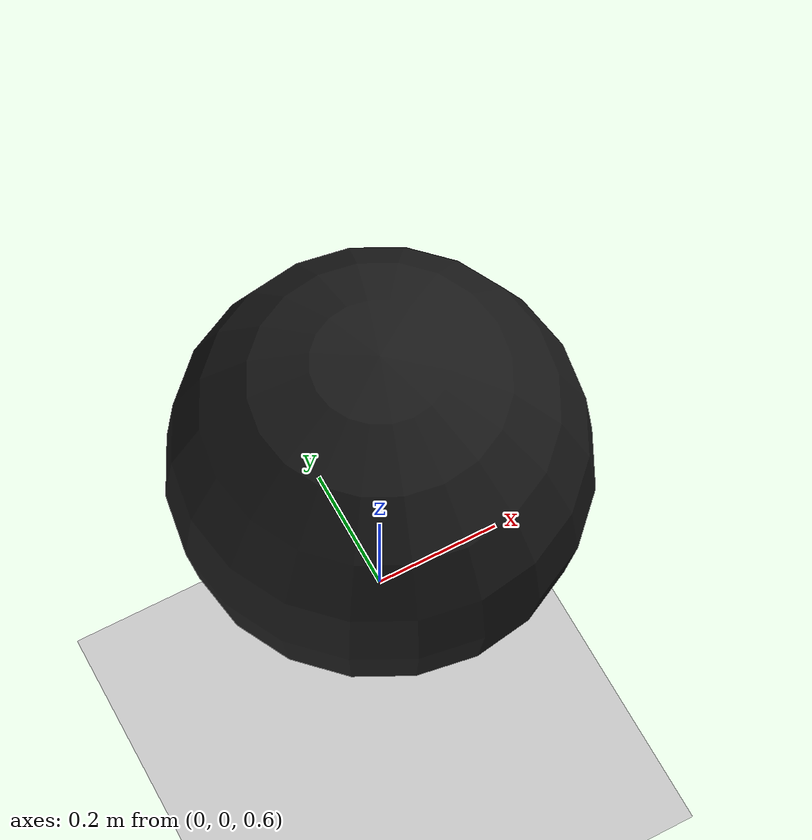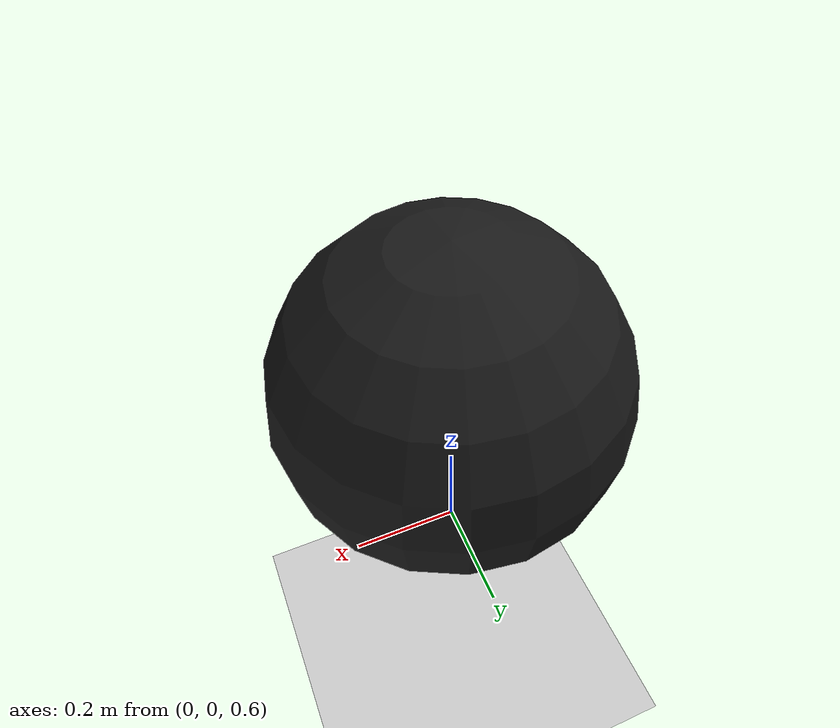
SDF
<?xml version="1.0" ?>
<sdf version="1.10">
  <world name="default">
    <!-- ai genrateed sdf used here -->
    <!-- Physics engine setup -->
    <plugin
      filename="gz-sim-physics-system"
      name="gz::sim::systems::Physics">
    </plugin>
    <plugin
      filename="gz-sim-user-commands-system"
      name="gz::sim::systems::UserCommands">
    </plugin>
    <plugin
      filename="gz-sim-scene-broadcaster-system"
      name="gz::sim::systems::SceneBroadcaster">
    </plugin>

    <!-- Standard sun light source -->
    <light type="directional" name="sun">
      <cast_shadows>true</cast_shadows>
      <pose>0 0 10 0 0 0</pose>
      <diffuse>0.8 0.8 0.8 1</diffuse>
      <specular>0.2 0.2 0.2 1</specular>
      <direction>-0.5 0.1 -0.9</direction>
    </light>

    <!-- Ground plane -->
    <model name="ground_plane">
      <static>true</static>
      <link name="link">
        <collision name="collision">
          <geometry>
            <plane>
              <normal>0 0 1</normal>
              <size>100 100</size>
            </plane>
          </geometry>
        </collision>
        <visual name="visual">
          <geometry>
            <plane>
              <normal>0 0 1</normal>
              <size>100 100</size>
            </plane>
          </geometry>
          <material>
            <ambient>0.8 0.8 0.8 1</ambient>
            <diffuse>0.8 0.8 0.8 1</diffuse>
          </material>
        </visual>
      </link>
    </model>

    <!-- Target sphere model attaching the custom LED plugin -->
    <model name="led_model">
      <pose>0 0 1.0 0 0 0</pose>
      <link name="link">
        <!-- Disabled gravity keeps the dynamic object floating in place -->
        <gravity>false</gravity>
        <visual name="led_visual">
          <geometry>
            <sphere>
              <radius>0.3</radius>
            </sphere>
          </geometry>
          <material>
            <ambient>0.1 0.1 0.1 1</ambient>
            <diffuse>0.1 0.1 0.1 1</diffuse>
          </material>
        </visual>
      </link>

      <!-- Custom LED System Plugin -->
      <plugin
        filename="libLedSensor.so"
        name="gz::sim::v8::systems::LedSensor">
        <topic>/led/state</topic>
        <blink_rate>5.0</blink_rate>
      </plugin>
    </model>

  </world>
</sdf>
